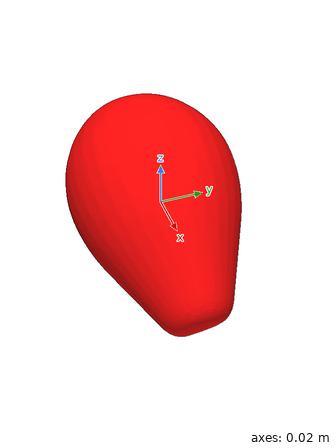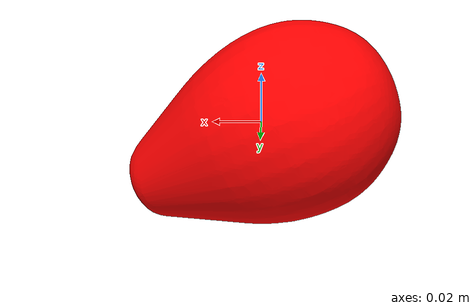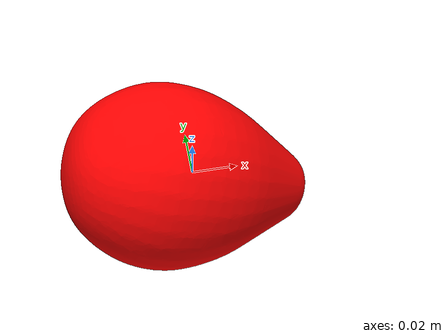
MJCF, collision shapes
<?xml version="1.0" ?>
<mujoco model="dark_brown_avocado">
	<compiler meshdir="dark_brown_avocado/meshes" texturedir="dark_brown_avocado/textures" angle="radian" autolimits="true" balanceinertia="true" boundmass="0.000001" boundinertia="0.000001"/>
	<default>
		<default class="visual">
			<geom contype="0" conaffinity="0"/>
		</default>
		<default class="collision">
			<geom rgba="1.0 0.0 0.0 0.0"/>
		</default>
	</default>
	<asset>
		<mesh name="DarkBrownAvocadoFlesh" file="obj/DarkBrownAvocadoFlesh.obj" scale="1.0 1.0 1.0"/>
		<mesh name="DarkBrownAvocadoFlesh_001" file="stl/DarkBrownAvocadoFlesh_001.stl" scale="1.0 1.0 1.0"/>
		<mesh name="DarkBrownAvocadoPeel" file="obj/DarkBrownAvocadoPeel.obj" scale="1.0 1.0 1.0"/>
		<mesh name="DarkBrownAvocadoPeel_001" file="stl/DarkBrownAvocadoPeel_001.stl" scale="1.0 1.0 1.0"/>
		<mesh name="DarkBrownAvocadoSeed" file="obj/DarkBrownAvocadoSeed.obj" scale="1.0 1.0 1.0"/>
		<mesh name="DarkBrownAvocadoSeed_001" file="stl/DarkBrownAvocadoSeed_001.stl" scale="1.0 1.0 1.0"/>
		<material name="M_DarkBrownAvocadoFlesh" texture="T_DarkBrownAvocadoFlesh"/>
		<material name="M_DarkBrownAvocadoPeel" texture="T_DarkBrownAvocadoPeel"/>
		<material name="M_DarkBrownAvocadoSeed" texture="T_DarkBrownAvocadoSeed"/>
		<texture name="T_DarkBrownAvocadoFlesh" type="2d" file="T_DarkBrownAvocadoFlesh.png"/>
		<texture name="T_DarkBrownAvocadoPeel" type="2d" file="T_DarkBrownAvocadoPeel.png"/>
		<texture name="T_DarkBrownAvocadoSeed" type="2d" file="T_DarkBrownAvocadoSeed.png"/>
	</asset>
	<worldbody>
		<body name="dark_brown_avocado" pos="0.0 0.0 0.0" quat="1.0 0.0 0.0 0.0">
			<body name="dark_brown_avocado_flesh" pos="0.0 0.0 0.0" quat="1.0 0.0 0.0 0.0">
				<inertial mass="0.286781907081604" pos="-0.005291021894663572 -3.1988158752938034e-06 -0.0023375293239951134" quat="-0.6185842752456665 0.7632954716682434 -0.11316130310297012 -0.14808113873004913" diaginertia="0.00015632178110536188 0.0002422279940219596 0.0002460240793880075"/>
				<geom name="DarkBrownAvocadoFlesh" type="mesh" pos="0.0 0.0 0.0" quat="1.0 0.0 0.0 0.0" mesh="DarkBrownAvocadoFlesh" material="M_DarkBrownAvocadoFlesh" class="visual"/>
				<geom name="DarkBrownAvocadoFlesh_001" type="mesh" pos="0.0 0.0 0.0" quat="1.0 0.0 0.0 0.0" mesh="DarkBrownAvocadoFlesh_001" class="collision"/>
			</body>
			<body name="dark_brown_avocado_seed" pos="0.0 0.0 0.0" quat="1.0 0.0 0.0 0.0">
				<inertial mass="0.024663496762514114" pos="-0.010412819683551788 -0.0001577374350745231 -0.0002522896393202245" quat="0.09759027510881424 0.9948261976242065 0.00619142409414053 -0.027543192729353905" diaginertia="3.0250164400058566e-06 5.994372713757912e-06 6.129022949608043e-06"/>
				<geom name="DarkBrownAvocadoSeed" type="mesh" pos="0.0 0.0 0.0" quat="1.0 0.0 0.0 0.0" mesh="DarkBrownAvocadoSeed" material="M_DarkBrownAvocadoSeed" class="visual"/>
				<geom name="DarkBrownAvocadoSeed_001" type="mesh" pos="0.0 0.0 0.0" quat="1.0 0.0 0.0 0.0" mesh="DarkBrownAvocadoSeed_001" class="collision"/>
			</body>
			<body name="dark_brown_avocado_peel" pos="0.0 0.0 0.0" quat="1.0 0.0 0.0 0.0">
				<inertial mass="0.6174211502075195" pos="-0.005436281207948923 7.964672477100976e-06 -0.0022861063480377197" quat="-0.6148379445075989 0.7662597894668579 -0.1126529648900032 -0.1487598866224289" diaginertia="0.00035311750252731144 0.0005478958482854068 0.0005560009158216417"/>
				<geom name="DarkBrownAvocadoPeel" type="mesh" pos="0.0 0.0 0.0" quat="1.0 0.0 0.0 0.0" mesh="DarkBrownAvocadoPeel" material="M_DarkBrownAvocadoPeel" class="visual"/>
				<geom name="DarkBrownAvocadoPeel_001" type="mesh" pos="0.0 0.0 0.0" quat="1.0 0.0 0.0 0.0" mesh="DarkBrownAvocadoPeel_001" class="collision"/>
			</body>
		</body>
	</worldbody>
	<equality/>
</mujoco>
